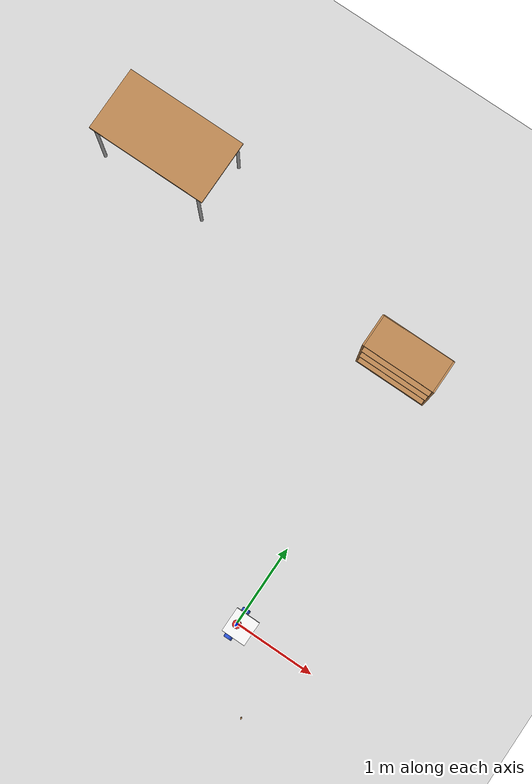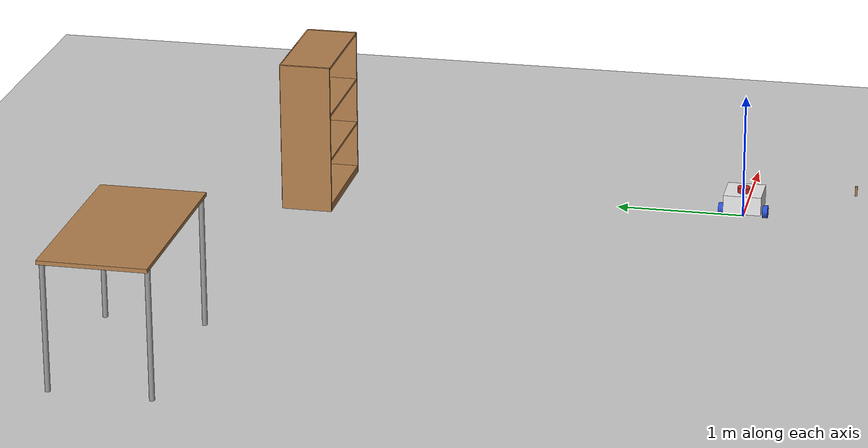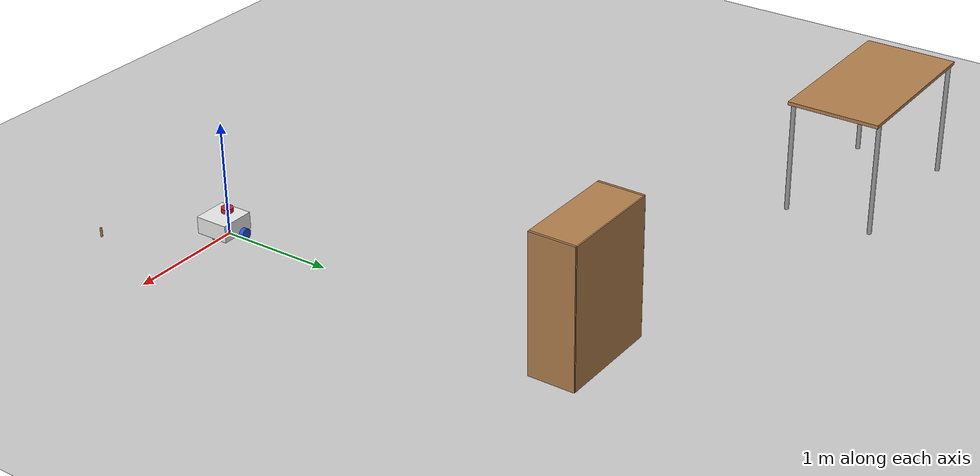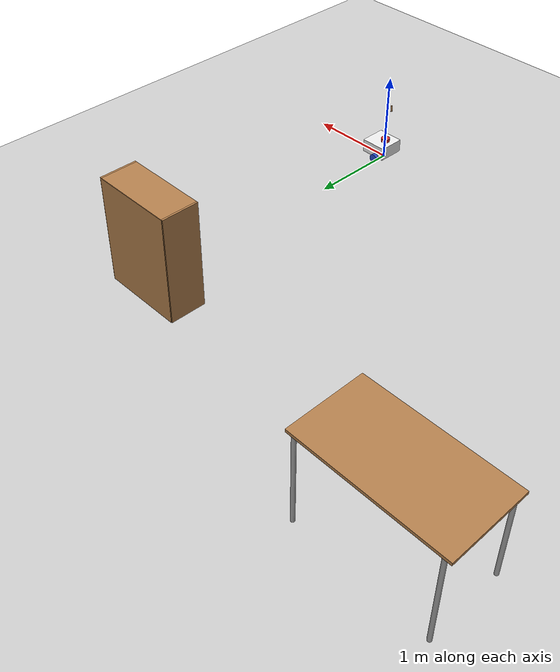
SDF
<sdf version="1.7">
 <world name="default">
  <light name="sun" type="directional">
   <pose>0 0 10 0 -0 0</pose>
   <diffuse>0.8 0.8 0.8 1</diffuse>
   <specular>0.2 0.2 0.2 1</specular>
   <attenuation>
    <range>1000</range>
    <constant>0.9</constant>
    <linear>0.01</linear>
    <quadratic>0.001</quadratic>
   </attenuation>
   <direction>-0.5 0.1 -0.9</direction>
   <spot><inner_angle>0</inner_angle><outer_angle>0</outer_angle><falloff>0</falloff></spot>
  </light>
  <model name="ground_plane">
   <static>1</static>
   <link name="link">
    <collision name="collision">
     <geometry><plane><normal>0 0 1</normal><size>100 100</size></plane></geometry>
     <surface><friction><ode><mu>100</mu><mu2>50</mu2></ode></friction></surface>
    </collision>
    <visual name="visual">
     <cast_shadows>0</cast_shadows>
     <geometry><plane><normal>0 0 1</normal><size>100 100</size></plane></geometry>
     <material>
      <script><uri>file://media/materials/scripts/gazebo.material</uri><name>Gazebo/Grey</name></script>
     </material>
    </visual>
   </link>
  </model>
  <gravity>0 0 -9.8</gravity>
  <magnetic_field>6e-06 2.3e-05 -4.2e-05</magnetic_field>
  <atmosphere type="adiabatic"/>
  <physics type="ode">
   <max_step_size>0.001</max_step_size>
   <real_time_factor>1</real_time_factor>
   <real_time_update_rate>1000</real_time_update_rate>
  </physics>
  <scene><ambient>0.4 0.4 0.4 1</ambient><background>0.7 0.7 0.7 1</background><shadows>1</shadows></scene>
  <spherical_coordinates>
   <surface_model>EARTH_WGS84</surface_model>
   <latitude_deg>0</latitude_deg>
   <longitude_deg>0</longitude_deg>
   <elevation>0</elevation>
   <heading_deg>0</heading_deg>
  </spherical_coordinates>
  <model name="my_bot">
   <link name="base_link">
    <inertial>
     <pose>0.055714 0 0.078571 0 -0 0</pose>
     <mass>0.7</mass>
     <inertia>
      <ixx>0.0064169</ixx>
      <ixy>0</ixy>
      <ixz>0.00118929</ixz>
      <iyy>0.00745405</iyy>
      <iyz>0</iyz>
      <izz>0.00876214</izz>
     </inertia>
    </inertial>
    <collision name="base_link_fixed_joint_lump__chassis_collision">
     <pose>0.05 0 0.075 0 -0 0</pose>
     <geometry><box><size>0.3 0.3 0.15</size></box></geometry>
    </collision>
    <collision name="base_link_fixed_joint_lump__caster_wheel_collision_1">
     <pose>0.14 0 0 0 -0 0</pose>
     <geometry><sphere><radius>0.05</radius></sphere></geometry>
     <surface><friction><ode><mu>0.001</mu><mu2>0.001</mu2></ode></friction></surface>
    </collision>
    <collision name="base_link_fixed_joint_lump__laser_frame_collision_2">
     <pose>0 0 0.175 0 -0 0</pose>
     <geometry><cylinder><length>0.04</length><radius>0.05</radius></cylinder></geometry>
    </collision>
    <visual name="base_link_fixed_joint_lump__chassis_visual">
     <pose>0.05 0 0.075 0 -0 0</pose>
     <geometry><box><size>0.3 0.3 0.15</size></box></geometry>
     <material>
      <script><name>Gazebo/White</name><uri>file://media/materials/scripts/gazebo.material</uri></script>
     </material>
    </visual>
    <visual name="base_link_fixed_joint_lump__caster_wheel_visual_1">
     <pose>0.14 0 0 0 -0 0</pose>
     <geometry><sphere><radius>0.05</radius></sphere></geometry>
     <material>
      <script><name>Gazebo/Black</name><uri>file://media/materials/scripts/gazebo.material</uri></script>
     </material>
    </visual>
    <visual name="base_link_fixed_joint_lump__laser_frame_visual_2">
     <pose>0 0 0.175 0 -0 0</pose>
     <geometry><cylinder><length>0.04</length><radius>0.05</radius></cylinder></geometry>
     <material>
      <script><name>Gazebo/Red</name><uri>file://media/materials/scripts/gazebo.material</uri></script>
     </material>
    </visual>
    <sensor name="laser" type="ray">
     <visualize>1</visualize>
     <update_rate>10</update_rate>
     <ray>
      <scan>
       <horizontal>
        <samples>360</samples>
        <min_angle>-3.14</min_angle>
        <max_angle>3.14</max_angle>
        <resolution>1</resolution>
       </horizontal>
       <vertical><samples>1</samples><min_angle>0</min_angle><max_angle>0</max_angle></vertical>
      </scan>
      <range><min>0.3</min><max>12</max></range>
     </ray>
     <plugin name="laser_controller" filename="libgazebo_ros_ray_sensor.so">
      <ros><argument>~/out:=scan</argument></ros>
      <output_type>sensor_msgs/LaserScan</output_type>
      <frame_name>laser_frame</frame_name>
     </plugin>
     <pose>0 0 0.175 0 -0 0</pose>
    </sensor>
   </link>
   <joint name="left_wheel_joint" type="revolute">
    <pose relative_to="base_link">0 0.175 0 -1.5708 0 0</pose>
    <parent>base_link</parent>
    <child>left_wheel</child>
    <axis>
     <xyz>0 0 1</xyz>
     <limit><lower>-1e+16</lower><upper>1e+16</upper></limit>
     <dynamics><spring_reference>0</spring_reference><spring_stiffness>0</spring_stiffness></dynamics>
    </axis>
   </joint>
   <link name="left_wheel">
    <pose relative_to="left_wheel_joint">0 0 0 0 -0 0</pose>
    <inertial>
     <mass>0.1</mass>
     <inertia>
      <ixx>7.58333e-05</ixx>
      <ixy>0</ixy>
      <ixz>0</ixz>
      <iyy>7.58333e-05</iyy>
      <iyz>0</iyz>
      <izz>0.000125</izz>
     </inertia>
    </inertial>
    <collision name="left_wheel_collision">
     <geometry><cylinder><length>0.04</length><radius>0.05</radius></cylinder></geometry>
    </collision>
    <visual name="left_wheel_visual">
     <geometry><cylinder><length>0.04</length><radius>0.05</radius></cylinder></geometry>
     <material>
      <script><name>Gazebo/Blue</name><uri>file://media/materials/scripts/gazebo.material</uri></script>
     </material>
    </visual>
   </link>
   <joint name="right_wheel_joint" type="revolute">
    <pose relative_to="base_link">0 -0.175 0 -1.5708 0 0</pose>
    <parent>base_link</parent>
    <child>right_wheel</child>
    <axis>
     <xyz>0 0 -1</xyz>
     <limit><lower>-1e+16</lower><upper>1e+16</upper></limit>
     <dynamics><spring_reference>0</spring_reference><spring_stiffness>0</spring_stiffness></dynamics>
    </axis>
   </joint>
   <link name="right_wheel">
    <pose relative_to="right_wheel_joint">0 0 0 0 -0 0</pose>
    <inertial>
     <mass>0.1</mass>
     <inertia>
      <ixx>7.58333e-05</ixx>
      <ixy>0</ixy>
      <ixz>0</ixz>
      <iyy>7.58333e-05</iyy>
      <iyz>0</iyz>
      <izz>0.000125</izz>
     </inertia>
    </inertial>
    <collision name="right_wheel_collision">
     <geometry><cylinder><length>0.04</length><radius>0.05</radius></cylinder></geometry>
    </collision>
    <visual name="right_wheel_visual">
     <geometry><cylinder><length>0.04</length><radius>0.05</radius></cylinder></geometry>
     <material>
      <script><name>Gazebo/Blue</name><uri>file://media/materials/scripts/gazebo.material</uri></script>
     </material>
    </visual>
   </link>
   <static>0</static>
   <plugin name="gazebo_ros2_control" filename="libgazebo_ros2_control.so">
    <parameters>/home/balaraman1928/dev_ws/install/my_bot/share/my_bot/config/my_controllers.yaml</parameters>
   </plugin>
   <pose>0.003342 -0.001057 0.049996 -2.2e-05 -3.2e-05 -0.000636</pose>
  </model>
  <model name="bookshelf">
   <static>1</static>
   <link name="link">
    <inertial><mass>1</mass></inertial>
    <collision name="back">
     <pose>0 0.005 0.6 0 -0 0</pose>
     <geometry><box><size>0.9 0.01 1.2</size></box></geometry>
    </collision>
    <visual name="visual1">
     <pose>0 0.005 0.6 0 -0 0</pose>
     <geometry><box><size>0.9 0.01 1.2</size></box></geometry>
     <material>
      <script><uri>file://media/materials/scripts/gazebo.material</uri><name>Gazebo/Wood</name></script>
     </material>
    </visual>
    <collision name="left_side">
     <pose>0.45 -0.195 0.6 0 -0 0</pose>
     <geometry><box><size>0.02 0.4 1.2</size></box></geometry>
    </collision>
    <visual name="visual2">
     <pose>0.45 -0.195 0.6 0 -0 0</pose>
     <geometry><box><size>0.02 0.4 1.2</size></box></geometry>
     <material>
      <script><uri>file://media/materials/scripts/gazebo.material</uri><name>Gazebo/Wood</name></script>
     </material>
    </visual>
    <collision name="right_side">
     <pose>-0.45 -0.195 0.6 0 -0 0</pose>
     <geometry><box><size>0.02 0.4 1.2</size></box></geometry>
    </collision>
    <visual name="visual3">
     <pose>-0.45 -0.195 0.6 0 -0 0</pose>
     <geometry><box><size>0.02 0.4 1.2</size></box></geometry>
     <material>
      <script><uri>file://media/materials/scripts/gazebo.material</uri><name>Gazebo/Wood</name></script>
     </material>
    </visual>
    <collision name="bottom">
     <pose>0 -0.195 0.03 0 -0 0</pose>
     <geometry><box><size>0.88 0.4 0.06</size></box></geometry>
    </collision>
    <visual name="visual4">
     <pose>0 -0.195 0.03 0 -0 0</pose>
     <geometry><box><size>0.88 0.4 0.06</size></box></geometry>
     <material>
      <script><uri>file://media/materials/scripts/gazebo.material</uri><name>Gazebo/Wood</name></script>
     </material>
    </visual>
    <collision name="top">
     <pose>0 -0.195 1.19 0 -0 0</pose>
     <geometry><box><size>0.88 0.4 0.02</size></box></geometry>
    </collision>
    <visual name="visual5">
     <pose>0 -0.195 1.19 0 -0 0</pose>
     <geometry><box><size>0.88 0.4 0.02</size></box></geometry>
     <material>
      <script><uri>file://media/materials/scripts/gazebo.material</uri><name>Gazebo/Wood</name></script>
     </material>
    </visual>
    <collision name="low_shelf">
     <pose>0 -0.195 0.43 0 -0 0</pose>
     <geometry><box><size>0.88 0.4 0.02</size></box></geometry>
    </collision>
    <visual name="visual6">
     <pose>0 -0.195 0.43 0 -0 0</pose>
     <geometry><box><size>0.88 0.4 0.02</size></box></geometry>
     <material>
      <script><uri>file://media/materials/scripts/gazebo.material</uri><name>Gazebo/Wood</name></script>
     </material>
    </visual>
    <collision name="high_shelf">
     <pose>0 -0.195 0.8 0 -0 0</pose>
     <geometry><box><size>0.88 0.4 0.02</size></box></geometry>
    </collision>
    <visual name="visual7">
     <pose>0 -0.195 0.8 0 -0 0</pose>
     <geometry><box><size>0.88 0.4 0.02</size></box></geometry>
     <material>
      <script><uri>file://media/materials/scripts/gazebo.material</uri><name>Gazebo/Wood</name></script>
     </material>
    </visual>
   </link>
   <pose>-0.099446 3.60654 0 0 -0 0</pose>
  </model>
  <model name="table">
   <static>1</static>
   <link name="link">
    <collision name="surface">
     <pose>0 0 1 0 -0 0</pose>
     <geometry><box><size>1.5 0.8 0.03</size></box></geometry>
     <surface><friction><ode><mu>0.6</mu><mu2>0.6</mu2></ode></friction></surface>
    </collision>
    <visual name="visual1">
     <pose>0 0 1 0 -0 0</pose>
     <geometry><box><size>1.5 0.8 0.03</size></box></geometry>
     <material>
      <script><uri>file://media/materials/scripts/gazebo.material</uri><name>Gazebo/Wood</name></script>
     </material>
    </visual>
    <collision name="front_left_leg">
     <pose>0.68 0.38 0.5 0 -0 0</pose>
     <geometry><cylinder><radius>0.02</radius><length>1</length></cylinder></geometry>
    </collision>
    <visual name="front_left_leg">
     <pose>0.68 0.38 0.5 0 -0 0</pose>
     <geometry><cylinder><radius>0.02</radius><length>1</length></cylinder></geometry>
     <material>
      <script><uri>file://media/materials/scripts/gazebo.material</uri><name>Gazebo/Grey</name></script>
     </material>
    </visual>
    <collision name="front_right_leg">
     <pose>0.68 -0.38 0.5 0 -0 0</pose>
     <geometry><cylinder><radius>0.02</radius><length>1</length></cylinder></geometry>
    </collision>
    <visual name="front_right_leg">
     <pose>0.68 -0.38 0.5 0 -0 0</pose>
     <geometry><cylinder><radius>0.02</radius><length>1</length></cylinder></geometry>
     <material>
      <script><uri>file://media/materials/scripts/gazebo.material</uri><name>Gazebo/Grey</name></script>
     </material>
    </visual>
    <collision name="back_right_leg">
     <pose>-0.68 -0.38 0.5 0 -0 0</pose>
     <geometry><cylinder><radius>0.02</radius><length>1</length></cylinder></geometry>
    </collision>
    <visual name="back_right_leg">
     <pose>-0.68 -0.38 0.5 0 -0 0</pose>
     <geometry><cylinder><radius>0.02</radius><length>1</length></cylinder></geometry>
     <material>
      <script><uri>file://media/materials/scripts/gazebo.material</uri><name>Gazebo/Grey</name></script>
     </material>
    </visual>
    <collision name="back_left_leg">
     <pose>-0.68 0.38 0.5 0 -0 0</pose>
     <geometry><cylinder><radius>0.02</radius><length>1</length></cylinder></geometry>
    </collision>
    <visual name="back_left_leg">
     <pose>-0.68 0.38 0.5 0 -0 0</pose>
     <geometry><cylinder><radius>0.02</radius><length>1</length></cylinder></geometry>
     <material>
      <script><uri>file://media/materials/scripts/gazebo.material</uri><name>Gazebo/Grey</name></script>
     </material>
    </visual>
   </link>
   <pose>-3.63073 3.95866 0 0 -0 0</pose>
  </model>
  <model name="wooden_peg">
   <link name="link">
    <pose>0 0 0.04 0 -0 0</pose>
    <inertial>
     <mass>0.0175</mass>
     <inertia>
      <ixx>9.74923e-06</ixx>
      <ixy>0</ixy>
      <ixz>0</ixz>
      <iyy>9.74923e-06</iyy>
      <iyz>0</iyz>
      <izz>8.31797e-07</izz>
     </inertia>
    </inertial>
    <collision name="collision">
     <geometry><cylinder><radius>0.00975</radius><length>0.08</length></cylinder></geometry>
     <surface>
      <contact>
       <poissons_ratio>0.347</poissons_ratio>
       <elastic_modulus>8.8e+09</elastic_modulus>
       <ode><kp>100000</kp><kd>100</kd><max_vel>100</max_vel><min_depth>0.001</min_depth></ode>
      </contact>
      <friction>
       <torsional>
        <coefficient>1</coefficient>
        <use_patch_radius>0</use_patch_radius>
        <surface_radius>0.01</surface_radius>
       </torsional>
      </friction>
     </surface>
    </collision>
    <visual name="visual">
     <geometry><cylinder><radius>0.00975</radius><length>0.08</length></cylinder></geometry>
     <material>
      <script><uri>file://media/materials/scripts/gazebo.material</uri><name>Gazebo/Wood</name></script>
     </material>
    </visual>
   </link>
   <pose>0.62506 -0.831629 -0.000647 4.9e-05 -5.6e-05 0</pose>
  </model>
 </world>
</sdf>
